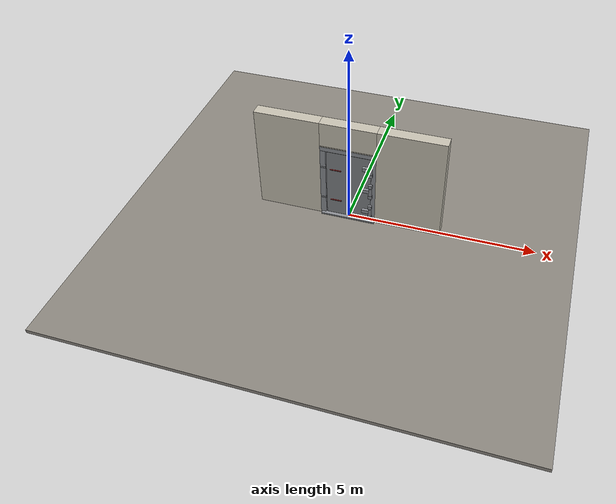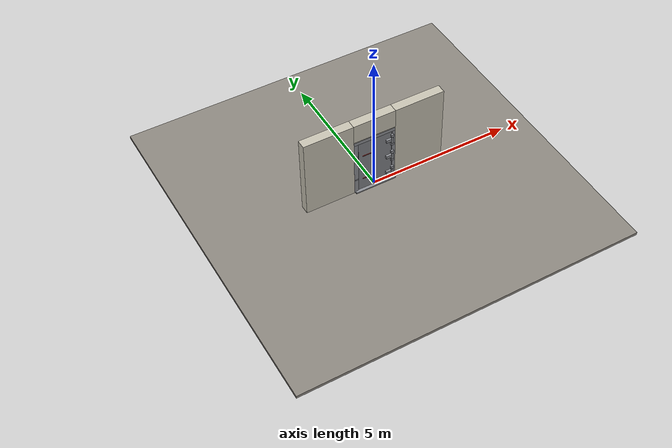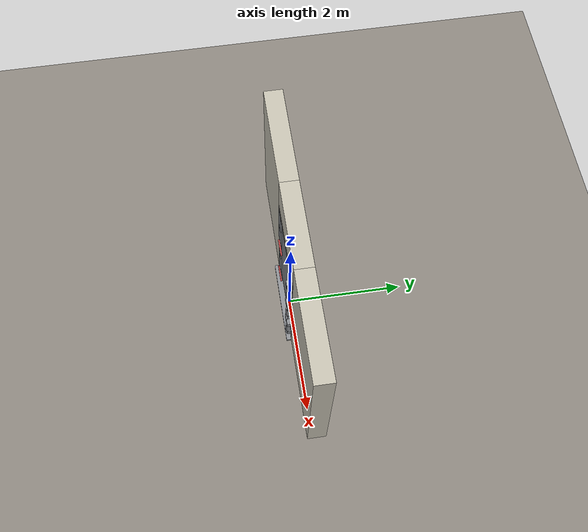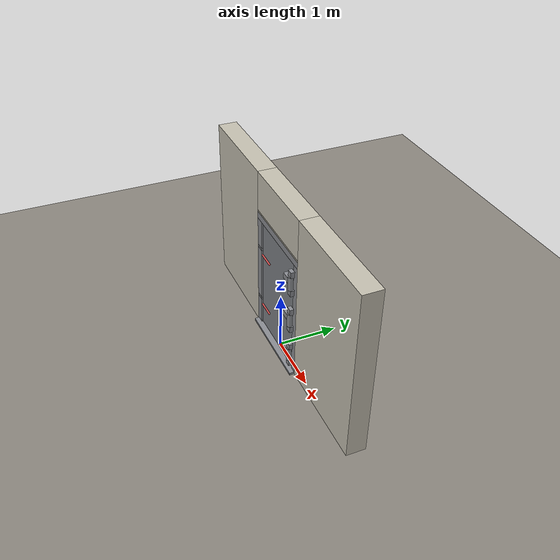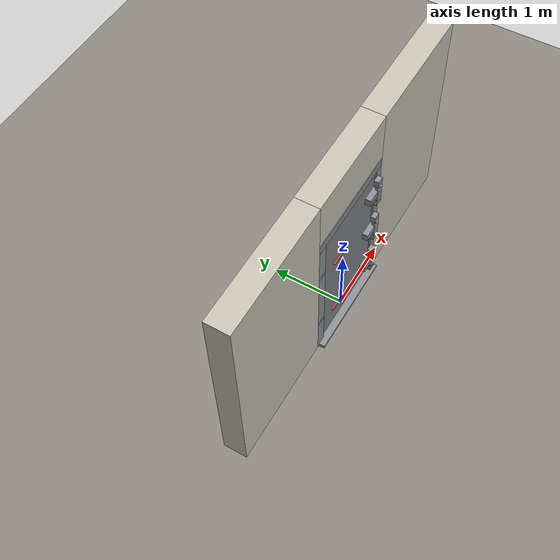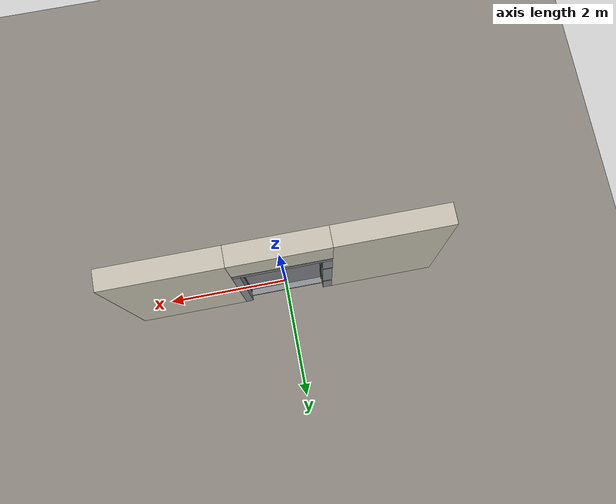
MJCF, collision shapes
<?xml version="1.0" ?>
<mujoco model="db0672_blast_simple">
  <compiler angle="radian" meshdir="../../hardware" texturedir="../../textures" autolimits="true" inertiafromgeom="false"/>
  <option timestep="0.002" integrator="implicitfast" cone="elliptic" impratio="10" noslip_iterations="3">
    <flag multiccd="enable"/>
  </option>
  <size memory="16M"/>
  <default>
    <geom condim="4" solref="0.005 1" solimp="0.95 0.99 0.001"/>
    <joint solreflimit="0.005 1" solimplimit="0.95 0.99 0.001"/>
    <tendon solreflimit="0.005 1"/>
    <equality solref="0.002 1"/>
  </default>
  <visual>
    <headlight ambient="0.4 0.4 0.4" diffuse="0.7 0.7 0.7" specular="0.2 0.2 0.2"/>
    <quality shadowsize="4096"/>
    <map znear="0.01" zfar="60"/>
  </visual>
  <asset>
    <mesh name="lever_c7a1f2892f" file="lever_c7a1f2892f.obj"/>
    <material name="mat_floor" rgba="0.55 0.53 0.5 1" specular="0.2" shininess="0.15" reflectance="0"/>
    <material name="mat_wall" rgba="0.78 0.76 0.7 1" specular="0.2" shininess="0.1" reflectance="0"/>
    <material name="mat_leaf" rgba="0.5 0.51 0.53 1" specular="0.23" shininess="0.64" reflectance="0.02"/>
    <material name="mat_op_nickel_satin" rgba="0.72 0.7 0.66 1" specular="0.8" shininess="0.65" reflectance="0.4"/>
    <material name="mat_vault_bolt" rgba="0.75 0.76 0.77 1" specular="0.8" shininess="0.65" reflectance="0.4"/>
    <material name="mat_frame" rgba="0.55 0.56 0.58 1" specular="0.8" shininess="0.55" reflectance="0.4"/>
    <material name="mat_hinge" rgba="0.55 0.56 0.58 1" specular="0.8" shininess="0.55" reflectance="0.4"/>
    <texture name="skybox" type="skybox" builtin="gradient" rgb1="0.6 0.7 0.85" rgb2="0.9 0.92 0.95" width="256" height="256"/>
  </asset>
  <worldbody>
    <light name="sun" pos="1.5 -2.5 4" dir="-0.3 0.5 -0.8" directional="true" diffuse="0.8 0.8 0.8" specular="0.3 0.3 0.3" castshadow="true"/>
    <light name="fill" pos="-1.5 2.5 3" dir="0.3 -0.5 -0.7" directional="true" diffuse="0.35 0.35 0.4" castshadow="false"/>
    <camera name="robot_view" pos="0 -2.485625 1.753375" xyaxes="1 0 0 0 0.26963 0.962964" fovy="52"/>
    <camera name="far_view" pos="0 2.645625 1.753375" xyaxes="-1 0 0 0 -0.26963 0.962964" fovy="52"/>
    <camera name="iso" pos="-1.949875 -2.075125 2.163875" xyaxes="0.741536 -0.670913 0 0.242917 0.268487 0.932151" fovy="46"/>
    <camera name="detail_handle" pos="-0.0445 -0.92 0.83" xyaxes="0.97561 0.219512 0 -0.070934 0.315262 0.94635" fovy="38"/>
    <geom name="floor" type="box" size="6 6 0.05" pos="0 0 -0.05" material="mat_floor" group="0" contype="1" conaffinity="1" friction="0.8 0.005 0.0001" density="2400"/>
    <geom name="wall_left" type="box" size="0.86925 0.16 1.45" pos="-1.63075 0.08 1.45" material="mat_wall" group="0" contype="1" conaffinity="1" friction="0.6 0.005 0.0001" density="800"/>
    <geom name="wall_right" type="box" size="0.88425 0.16 1.45" pos="1.61575 0.08 1.45" material="mat_wall" group="0" contype="1" conaffinity="1" friction="0.6 0.005 0.0001" density="800"/>
    <geom name="wall_header" type="box" size="0.7465 0.16 0.34" pos="-0.015 0.08 2.56" material="mat_wall" group="0" contype="1" conaffinity="1" friction="0.6 0.005 0.0001" density="800"/>
    <geom name="jamb_hinge" type="box" size="0.06 0.16 1.035" pos="0.6715 0.08 1.035" material="mat_frame" group="0" contype="1" conaffinity="1" friction="0.6 0.005 0.0001" density="300"/>
    <geom name="strike_550_wall_n" type="box" size="0.075 0.111 0.021" pos="-0.6865 0.129 0.55" material="mat_frame" group="0" contype="1" conaffinity="1" friction="0.6 0.005 0.0001" density="300"/>
    <geom name="strike_550_wall_p" type="box" size="0.075 0.031 0.021" pos="-0.6865 -0.049 0.55" material="mat_frame" group="0" contype="1" conaffinity="1" friction="0.6 0.005 0.0001" density="300"/>
    <geom name="strike_550_back" type="box" size="0.0405 0.018 0.021" pos="-0.721 0 0.55" material="mat_frame" group="0" contype="1" conaffinity="1" friction="0.6 0.005 0.0001" density="300"/>
    <geom name="strike_1550_wall_n" type="box" size="0.075 0.111 0.021" pos="-0.6865 0.129 1.55" material="mat_frame" group="0" contype="1" conaffinity="1" friction="0.6 0.005 0.0001" density="300"/>
    <geom name="strike_1550_wall_p" type="box" size="0.075 0.031 0.021" pos="-0.6865 -0.049 1.55" material="mat_frame" group="0" contype="1" conaffinity="1" friction="0.6 0.005 0.0001" density="300"/>
    <geom name="strike_1550_back" type="box" size="0.0405 0.018 0.021" pos="-0.721 0 1.55" material="mat_frame" group="0" contype="1" conaffinity="1" friction="0.6 0.005 0.0001" density="300"/>
    <geom name="jamb_strike_0" type="box" size="0.075 0.16 0.2645" pos="-0.6865 0.08 0.2645" material="mat_frame" group="0" contype="1" conaffinity="1" friction="0.6 0.005 0.0001" density="300"/>
    <geom name="jamb_strike_1" type="box" size="0.075 0.16 0.479" pos="-0.6865 0.08 1.05" material="mat_frame" group="0" contype="1" conaffinity="1" friction="0.6 0.005 0.0001" density="300"/>
    <geom name="jamb_strike_2" type="box" size="0.075 0.16 0.2495" pos="-0.6865 0.08 1.8205" material="mat_frame" group="0" contype="1" conaffinity="1" friction="0.6 0.005 0.0001" density="300"/>
    <geom name="jamb_head" type="box" size="0.7465 0.16 0.06" pos="-0.015 0.08 2.13" material="mat_frame" group="0" contype="1" conaffinity="1" friction="0.6 0.005 0.0001" density="300"/>
    <geom name="head_stud" type="box" size="0.7465 0.16 0.015" pos="-0.015 0.08 2.205" material="mat_wall" group="0" contype="1" conaffinity="1" friction="0.6 0.005 0.0001" density="500"/>
    <geom name="stop_hinge" type="box" size="0.0055 0.016 1.035" pos="0.606 0.0765 1.035" material="mat_frame" group="0" contype="1" conaffinity="1" friction="0.6 0.005 0.0001" density="300"/>
    <geom name="stop_strike" type="box" size="0.0055 0.016 1.035" pos="-0.606 0.0765 1.035" material="mat_frame" group="0" contype="1" conaffinity="1" friction="0.6 0.005 0.0001" density="300"/>
    <geom name="stop_head" type="box" size="0.6115 0.016 0.0055" pos="0 0.0765 2.0645" material="mat_frame" group="0" contype="1" conaffinity="1" friction="0.6 0.005 0.0001" density="300"/>
    <geom name="sill_step" type="box" size="0.7315 0.16 0.02" pos="0 0 0.02" material="mat_frame" group="0" contype="1" conaffinity="1" friction="0.6 0.005 0.0001" density="7850"/>
    <geom name="hinge_0_bracket_b" type="box" size="0.05 0.0325 0.05" pos="0.6055 -0.1125 0.18" material="mat_hinge" group="1" contype="0" conaffinity="0" density="7850"/>
    <geom name="hinge_0_bracket_t" type="box" size="0.05 0.0325 0.05" pos="0.6055 -0.1125 0.52" material="mat_hinge" group="1" contype="0" conaffinity="0" density="7850"/>
    <geom name="hinge_1_bracket_b" type="box" size="0.05 0.0325 0.05" pos="0.6055 -0.1125 0.88" material="mat_hinge" group="1" contype="0" conaffinity="0" density="7850"/>
    <geom name="hinge_1_bracket_t" type="box" size="0.05 0.0325 0.05" pos="0.6055 -0.1125 1.22" material="mat_hinge" group="1" contype="0" conaffinity="0" density="7850"/>
    <geom name="hinge_2_bracket_b" type="box" size="0.05 0.0325 0.05" pos="0.6055 -0.1125 1.58" material="mat_hinge" group="1" contype="0" conaffinity="0" density="7850"/>
    <geom name="hinge_2_bracket_t" type="box" size="0.05 0.0325 0.05" pos="0.6055 -0.1125 1.92" material="mat_hinge" group="1" contype="0" conaffinity="0" density="7850"/>
    <site name="approach_point" pos="0 -1.5 0" quat="1 0 0 0" size="0.05" rgba="0.2 0.9 0.2 0.5" group="4"/>
    <site name="goal_point" pos="0 1.5 0" quat="1 0 0 0" size="0.05" rgba="0.2 0.9 0.2 0.5" group="4"/>
    <site name="door_plane_center" pos="0 0 1.035" quat="1 0 0 0" size="0.02" rgba="0.2 0.9 0.2 0.5" group="4"/>
    <body name="leaf" pos="0.6115 0 0">
      <inertial pos="-0.574924 -0.006402 1.05" mass="1167.443243" quat="0.506368 0.493549 -0.506368 0.493549" diaginertia="152.733604314 390.901567855 539.554886783"/>
      <joint name="leaf_hinge" type="hinge" axis="0 0 1" pos="-0.006 -0.125 0" limited="true" range="0 1.745329" damping="0.798984" frictionloss="44.014064" armature="0.5"/>
      <geom name="leaf_slab" type="box" size="0.6 0.06 1" pos="-0.606 0 1.05" material="mat_leaf" group="0" contype="1" conaffinity="1" friction="0.45 0.005 0.0001" density="1"/>
      <geom name="hinge_0" type="cylinder" size="0.04 0.12" pos="-0.006 -0.125 0.35" material="mat_hinge" group="1" contype="0" conaffinity="0" density="7850"/>
      <geom name="hinge_0_arm" type="box" size="0.11 0.04 0.05" pos="-0.116 -0.1 0.35" material="mat_hinge" group="1" contype="0" conaffinity="0" density="7850"/>
      <geom name="hinge_1" type="cylinder" size="0.04 0.12" pos="-0.006 -0.125 1.05" material="mat_hinge" group="1" contype="0" conaffinity="0" density="7850"/>
      <geom name="hinge_1_arm" type="box" size="0.11 0.04 0.05" pos="-0.116 -0.1 1.05" material="mat_hinge" group="1" contype="0" conaffinity="0" density="7850"/>
      <geom name="hinge_2" type="cylinder" size="0.04 0.12" pos="-0.006 -0.125 1.75" material="mat_hinge" group="1" contype="0" conaffinity="0" density="7850"/>
      <geom name="hinge_2_arm" type="box" size="0.11 0.04 0.05" pos="-0.116 -0.1 1.75" material="mat_hinge" group="1" contype="0" conaffinity="0" density="7850"/>
      <body name="dog_0" pos="-1.086 0 0.55">
        <inertial pos="0.138181 -0.112433 0" mass="4.666646" quat="0.044336 0 0 0.999017" diaginertia="0.001676913 0.056977311 0.05779918"/>
        <joint name="dog_0_hinge" type="hinge" axis="0 1 0" limited="true" range="0 1.5708" damping="1" frictionloss="6" armature="0.005"/>
        <geom name="dog_0_lever" type="mesh" mesh="lever_c7a1f2892f" pos="0 -0.06 0" quat="0 0 -0.707107 0.707107" material="mat_op_nickel_satin" group="1" contype="0" conaffinity="0" density="7800"/>
        <geom name="dog_0_lever_col" type="capsule" size="0.015 0.14" pos="0.15 -0.12 0" quat="0.707107 0 0.707107 0" material="mat_op_nickel_satin" group="3" contype="1" conaffinity="1" rgba="0.8 0.3 0.3 0.25" friction="0.7 0.01 0.0001" density="7800"/>
        <site name="dog_0_grip" pos="0.25 -0.12 0" quat="1 0 0 0" size="0.012" rgba="0.2 0.9 0.2 0.5" group="4"/>
      </body>
      <body name="bolt_0" pos="-1.206 0 0.55">
        <inertial pos="0.0185 0 0" mass="0.961733" quat="0 0 -0.707107 0.707107" diaginertia="0.000119654 0.001933164 0.001933164"/>
        <joint name="bolt_0_slide" type="slide" axis="1 0 0" limited="true" range="0 0.063" damping="20" frictionloss="25" armature="0.1"/>
        <geom name="bolt_0_geom" type="capsule" size="0.016 0.0655" pos="0.0185 0 0" quat="0.707107 0 -0.707107 0" material="mat_vault_bolt" group="0" contype="1" conaffinity="1" friction="0.3 0.005 0.0001" density="7850"/>
      </body>
      <body name="dog_1" pos="-1.086 0 1.55">
        <inertial pos="0.138181 -0.112433 0" mass="4.666646" quat="0.044336 0 0 0.999017" diaginertia="0.001676913 0.056977311 0.05779918"/>
        <joint name="dog_1_hinge" type="hinge" axis="0 1 0" limited="true" range="0 1.5708" damping="1" frictionloss="6" armature="0.005"/>
        <geom name="dog_1_lever" type="mesh" mesh="lever_c7a1f2892f" pos="0 -0.06 0" quat="0 0 -0.707107 0.707107" material="mat_op_nickel_satin" group="1" contype="0" conaffinity="0" density="7800"/>
        <geom name="dog_1_lever_col" type="capsule" size="0.015 0.14" pos="0.15 -0.12 0" quat="0.707107 0 0.707107 0" material="mat_op_nickel_satin" group="3" contype="1" conaffinity="1" rgba="0.8 0.3 0.3 0.25" friction="0.7 0.01 0.0001" density="7800"/>
        <site name="dog_1_grip" pos="0.25 -0.12 0" quat="1 0 0 0" size="0.012" rgba="0.2 0.9 0.2 0.5" group="4"/>
      </body>
      <body name="bolt_1" pos="-1.206 0 1.55">
        <inertial pos="0.0185 0 0" mass="0.961733" quat="0 0 -0.707107 0.707107" diaginertia="0.000119654 0.001933164 0.001933164"/>
        <joint name="bolt_1_slide" type="slide" axis="1 0 0" limited="true" range="0 0.063" damping="20" frictionloss="25" armature="0.1"/>
        <geom name="bolt_1_geom" type="capsule" size="0.016 0.0655" pos="0.0185 0 0" quat="0.707107 0 -0.707107 0" material="mat_vault_bolt" group="0" contype="1" conaffinity="1" friction="0.3 0.005 0.0001" density="7850"/>
      </body>
    </body>
  </worldbody>
  <equality>
    <joint name="lever_bolt_0" joint1="bolt_0_slide" joint2="dog_0_hinge" polycoef="0 0.040107 0 0 0" active="true"/>
    <joint name="lever_bolt_1" joint1="bolt_1_slide" joint2="dog_1_hinge" polycoef="0 0.040107 0 0 0" active="true"/>
  </equality>
  <sensor>
    <jointpos name="leaf_hinge_pos" joint="leaf_hinge"/>
    <jointvel name="leaf_hinge_vel" joint="leaf_hinge"/>
    <jointpos name="dog_0_hinge_pos" joint="dog_0_hinge"/>
    <jointvel name="dog_0_hinge_vel" joint="dog_0_hinge"/>
    <jointpos name="bolt_0_slide_pos" joint="bolt_0_slide"/>
    <jointvel name="bolt_0_slide_vel" joint="bolt_0_slide"/>
    <jointpos name="dog_1_hinge_pos" joint="dog_1_hinge"/>
    <jointvel name="dog_1_hinge_vel" joint="dog_1_hinge"/>
    <jointpos name="bolt_1_slide_pos" joint="bolt_1_slide"/>
    <jointvel name="bolt_1_slide_vel" joint="bolt_1_slide"/>
  </sensor>
</mujoco>
